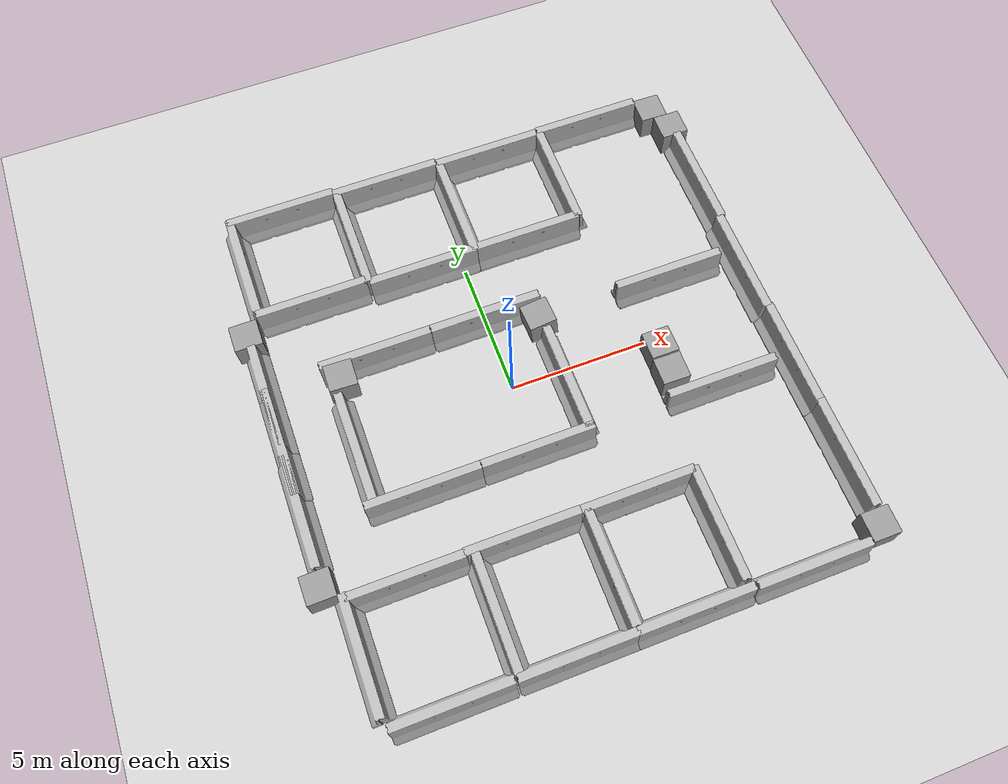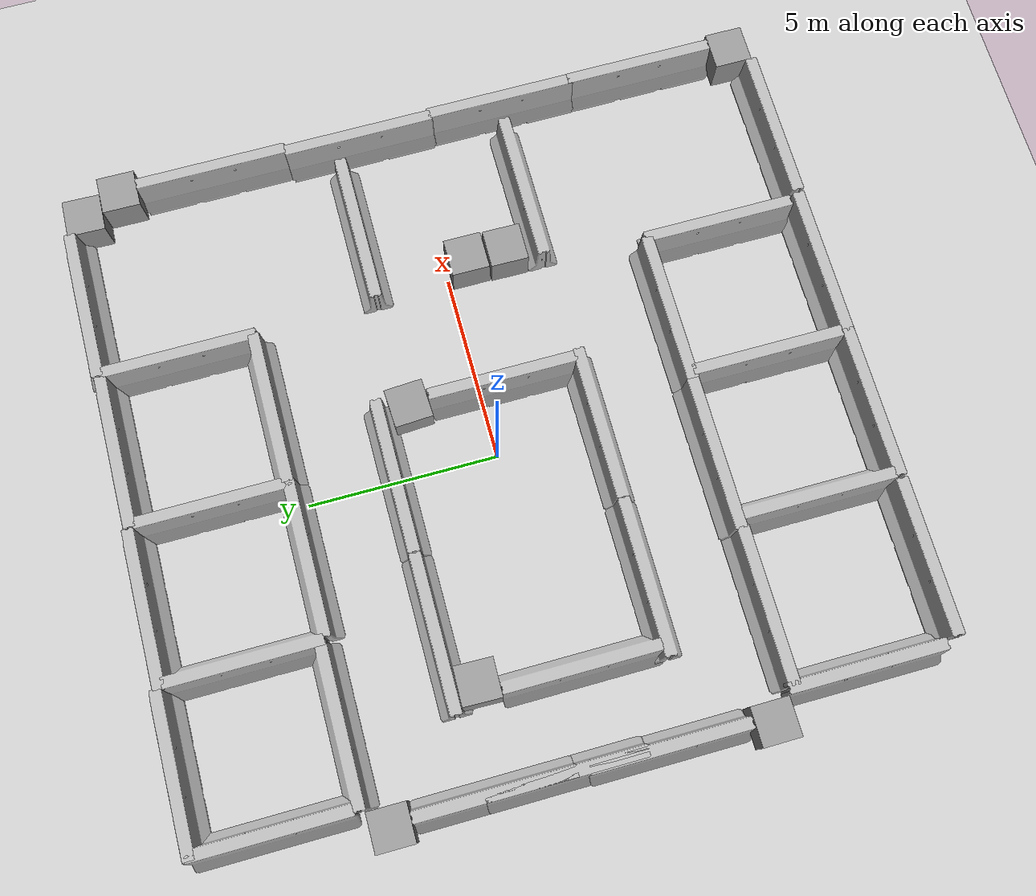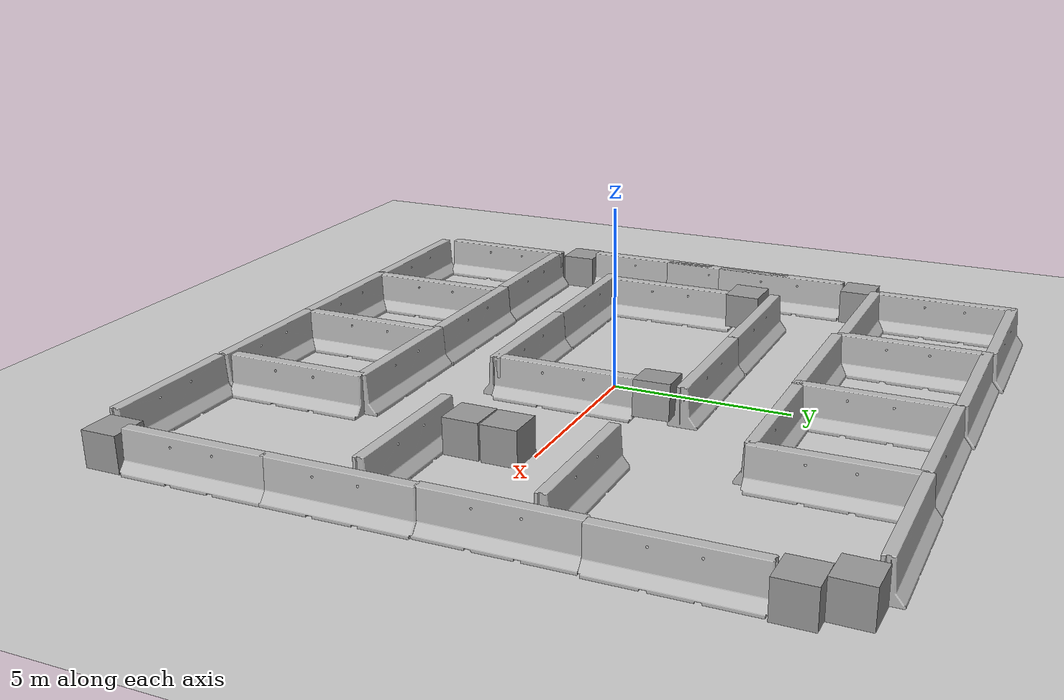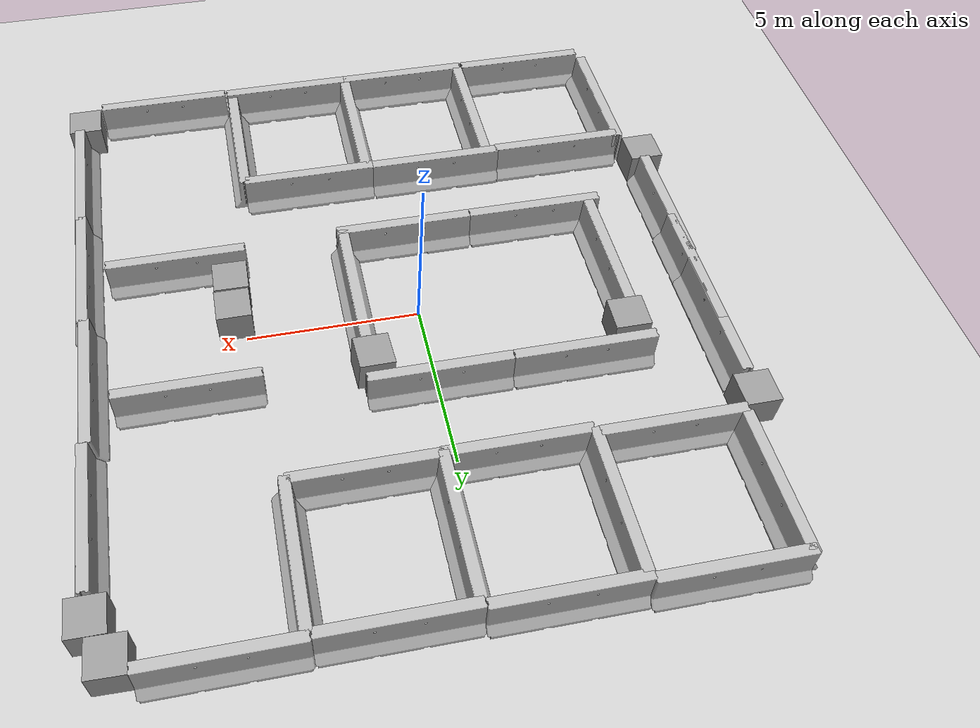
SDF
<sdf version="1.6">
 <world name="default">
  <light name="sun" type="directional">
   <pose>0 0 10 0 -0 0</pose>
   <diffuse>0.8 0.8 0.8 1</diffuse>
   <specular>0.2 0.2 0.2 1</specular>
   <attenuation>
    <range>1000</range>
    <constant>0.9</constant>
    <linear>0.01</linear>
    <quadratic>0.001</quadratic>
   </attenuation>
   <direction>-0.5 0.1 -0.9</direction>
  </light>
  <model name="ground_plane">
   <static>1</static>
   <link name="link">
    <collision name="collision">
     <geometry><plane><normal>0 0 1</normal><size>100 100</size></plane></geometry>
     <surface><friction><ode><mu>100</mu><mu2>50</mu2></ode></friction></surface>
    </collision>
    <visual name="visual">
     <cast_shadows>0</cast_shadows>
     <geometry><plane><normal>0 0 1</normal><size>100 100</size></plane></geometry>
     <material>
      <script><uri>file://media/materials/scripts/gazebo.material</uri><name>Gazebo/Grey</name></script>
     </material>
    </visual>
   </link>
  </model>
  <gravity>0 0 -9.8</gravity>
  <magnetic_field>6e-06 2.3e-05 -4.2e-05</magnetic_field>
  <atmosphere type="adiabatic"/>
  <physics name="default_physics" default="0" type="ode">
   <max_step_size>0.001</max_step_size>
   <real_time_factor>1</real_time_factor>
   <real_time_update_rate>1000</real_time_update_rate>
  </physics>
  <scene><ambient>0.4 0.4 0.4 1</ambient><background>0.7 0.7 0.7 1</background><shadows>1</shadows></scene>
  <spherical_coordinates>
   <surface_model>EARTH_WGS84</surface_model>
   <latitude_deg>0</latitude_deg>
   <longitude_deg>0</longitude_deg>
   <elevation>0</elevation>
   <heading_deg>0</heading_deg>
  </spherical_coordinates>
  <model name="jersey_barrier">
   <static>1</static>
   <link name="link">
    <visual name="visual">
     <geometry>
      <mesh><uri>model://jersey_barrier/meshes/jersey_barrier.dae</uri><scale>1 1 1</scale></mesh>
     </geometry>
    </visual>
    <collision name="upright">
     <pose>0 0 0.5715 0 -0 0</pose>
     <geometry><box><size>4.06542 0.3063 1.143</size></box></geometry>
    </collision>
    <collision name="base">
     <pose>0 0 0.032258 0 -0 0</pose>
     <geometry><box><size>4.06542 0.8107 0.064516</size></box></geometry>
    </collision>
    <collision name="base2">
     <pose>0 0 0.1 0 -0 0</pose>
     <geometry><box><size>4.06542 0.65 0.1</size></box></geometry>
    </collision>
    <collision name="base3">
     <pose>0 0 0.2 0 -0 0</pose>
     <geometry><box><size>4.06542 0.5 0.1</size></box></geometry>
    </collision>
    <collision name="left-angle">
     <pose>0 -0.224 0.2401 0.9 -0 0</pose>
     <geometry><box><size>4.06542 0.5 0.064516</size></box></geometry>
    </collision>
    <collision name="right-angle">
     <pose>0 0.224 0.2401 -0.9 0 0</pose>
     <geometry><box><size>4.06542 0.5 0.064516</size></box></geometry>
    </collision>
   </link>
   <pose>-5.65677 9.4608 0 0 -0 0</pose>
  </model>
  <model name="jersey_barrier_clone">
   <static>1</static>
   <link name="link">
    <visual name="visual">
     <geometry>
      <mesh><uri>model://jersey_barrier/meshes/jersey_barrier.dae</uri><scale>1 1 1</scale></mesh>
     </geometry>
    </visual>
    <collision name="upright">
     <pose>0 0 0.5715 0 -0 0</pose>
     <geometry><box><size>4.06542 0.3063 1.143</size></box></geometry>
    </collision>
    <collision name="base">
     <pose>0 0 0.032258 0 -0 0</pose>
     <geometry><box><size>4.06542 0.8107 0.064516</size></box></geometry>
    </collision>
    <collision name="base2">
     <pose>0 0 0.1 0 -0 0</pose>
     <geometry><box><size>4.06542 0.65 0.1</size></box></geometry>
    </collision>
    <collision name="base3">
     <pose>0 0 0.2 0 -0 0</pose>
     <geometry><box><size>4.06542 0.5 0.1</size></box></geometry>
    </collision>
    <collision name="left-angle">
     <pose>0 -0.224 0.2401 0.9 -0 0</pose>
     <geometry><box><size>4.06542 0.5 0.064516</size></box></geometry>
    </collision>
    <collision name="right-angle">
     <pose>0 0.224 0.2401 -0.9 0 0</pose>
     <geometry><box><size>4.06542 0.5 0.064516</size></box></geometry>
    </collision>
   </link>
   <pose>-1.65987 9.36075 0 0 -0 0</pose>
  </model>
  <model name="jersey_barrier_clone_0">
   <static>1</static>
   <link name="link">
    <visual name="visual">
     <geometry>
      <mesh><uri>model://jersey_barrier/meshes/jersey_barrier.dae</uri><scale>1 1 1</scale></mesh>
     </geometry>
    </visual>
    <collision name="upright">
     <pose>0 0 0.5715 0 -0 0</pose>
     <geometry><box><size>4.06542 0.3063 1.143</size></box></geometry>
    </collision>
    <collision name="base">
     <pose>0 0 0.032258 0 -0 0</pose>
     <geometry><box><size>4.06542 0.8107 0.064516</size></box></geometry>
    </collision>
    <collision name="base2">
     <pose>0 0 0.1 0 -0 0</pose>
     <geometry><box><size>4.06542 0.65 0.1</size></box></geometry>
    </collision>
    <collision name="base3">
     <pose>0 0 0.2 0 -0 0</pose>
     <geometry><box><size>4.06542 0.5 0.1</size></box></geometry>
    </collision>
    <collision name="left-angle">
     <pose>0 -0.224 0.2401 0.9 -0 0</pose>
     <geometry><box><size>4.06542 0.5 0.064516</size></box></geometry>
    </collision>
    <collision name="right-angle">
     <pose>0 0.224 0.2401 -0.9 0 0</pose>
     <geometry><box><size>4.06542 0.5 0.064516</size></box></geometry>
    </collision>
   </link>
   <pose>2.39773 9.29085 0 0 -0 0</pose>
  </model>
  <model name="jersey_barrier_clone_1">
   <static>1</static>
   <link name="link">
    <visual name="visual">
     <geometry>
      <mesh><uri>model://jersey_barrier/meshes/jersey_barrier.dae</uri><scale>1 1 1</scale></mesh>
     </geometry>
    </visual>
    <collision name="upright">
     <pose>0 0 0.5715 0 -0 0</pose>
     <geometry><box><size>4.06542 0.3063 1.143</size></box></geometry>
    </collision>
    <collision name="base">
     <pose>0 0 0.032258 0 -0 0</pose>
     <geometry><box><size>4.06542 0.8107 0.064516</size></box></geometry>
    </collision>
    <collision name="base2">
     <pose>0 0 0.1 0 -0 0</pose>
     <geometry><box><size>4.06542 0.65 0.1</size></box></geometry>
    </collision>
    <collision name="base3">
     <pose>0 0 0.2 0 -0 0</pose>
     <geometry><box><size>4.06542 0.5 0.1</size></box></geometry>
    </collision>
    <collision name="left-angle">
     <pose>0 -0.224 0.2401 0.9 -0 0</pose>
     <geometry><box><size>4.06542 0.5 0.064516</size></box></geometry>
    </collision>
    <collision name="right-angle">
     <pose>0 0.224 0.2401 -0.9 0 0</pose>
     <geometry><box><size>4.06542 0.5 0.064516</size></box></geometry>
    </collision>
   </link>
   <pose>6.45464 9.33993 0 0 -0 0</pose>
  </model>
  <model name="jersey_barrier_clone_3">
   <static>1</static>
   <link name="link">
    <visual name="visual">
     <geometry>
      <mesh><uri>model://jersey_barrier/meshes/jersey_barrier.dae</uri><scale>1 1 1</scale></mesh>
     </geometry>
    </visual>
    <collision name="upright">
     <pose>0 0 0.5715 0 -0 0</pose>
     <geometry><box><size>4.06542 0.3063 1.143</size></box></geometry>
    </collision>
    <collision name="base">
     <pose>0 0 0.032258 0 -0 0</pose>
     <geometry><box><size>4.06542 0.8107 0.064516</size></box></geometry>
    </collision>
    <collision name="base2">
     <pose>0 0 0.1 0 -0 0</pose>
     <geometry><box><size>4.06542 0.65 0.1</size></box></geometry>
    </collision>
    <collision name="base3">
     <pose>0 0 0.2 0 -0 0</pose>
     <geometry><box><size>4.06542 0.5 0.1</size></box></geometry>
    </collision>
    <collision name="left-angle">
     <pose>0 -0.224 0.2401 0.9 -0 0</pose>
     <geometry><box><size>4.06542 0.5 0.064516</size></box></geometry>
    </collision>
    <collision name="right-angle">
     <pose>0 0.224 0.2401 -0.9 0 0</pose>
     <geometry><box><size>4.06542 0.5 0.064516</size></box></geometry>
    </collision>
   </link>
   <pose>9.44656 5.35522 0 0 0 -1.56865</pose>
  </model>
  <model name="jersey_barrier_clone_3_clone">
   <static>1</static>
   <link name="link">
    <visual name="visual">
     <geometry>
      <mesh><uri>model://jersey_barrier/meshes/jersey_barrier.dae</uri><scale>1 1 1</scale></mesh>
     </geometry>
    </visual>
    <collision name="upright">
     <pose>0 0 0.5715 0 -0 0</pose>
     <geometry><box><size>4.06542 0.3063 1.143</size></box></geometry>
    </collision>
    <collision name="base">
     <pose>0 0 0.032258 0 -0 0</pose>
     <geometry><box><size>4.06542 0.8107 0.064516</size></box></geometry>
    </collision>
    <collision name="base2">
     <pose>0 0 0.1 0 -0 0</pose>
     <geometry><box><size>4.06542 0.65 0.1</size></box></geometry>
    </collision>
    <collision name="base3">
     <pose>0 0 0.2 0 -0 0</pose>
     <geometry><box><size>4.06542 0.5 0.1</size></box></geometry>
    </collision>
    <collision name="left-angle">
     <pose>0 -0.224 0.2401 0.9 -0 0</pose>
     <geometry><box><size>4.06542 0.5 0.064516</size></box></geometry>
    </collision>
    <collision name="right-angle">
     <pose>0 0.224 0.2401 -0.9 0 0</pose>
     <geometry><box><size>4.06542 0.5 0.064516</size></box></geometry>
    </collision>
   </link>
   <pose>9.3727 1.33119 0 0 0 -1.56865</pose>
  </model>
  <model name="jersey_barrier_clone_3_clone_0">
   <static>1</static>
   <link name="link">
    <visual name="visual">
     <geometry>
      <mesh><uri>model://jersey_barrier/meshes/jersey_barrier.dae</uri><scale>1 1 1</scale></mesh>
     </geometry>
    </visual>
    <collision name="upright">
     <pose>0 0 0.5715 0 -0 0</pose>
     <geometry><box><size>4.06542 0.3063 1.143</size></box></geometry>
    </collision>
    <collision name="base">
     <pose>0 0 0.032258 0 -0 0</pose>
     <geometry><box><size>4.06542 0.8107 0.064516</size></box></geometry>
    </collision>
    <collision name="base2">
     <pose>0 0 0.1 0 -0 0</pose>
     <geometry><box><size>4.06542 0.65 0.1</size></box></geometry>
    </collision>
    <collision name="base3">
     <pose>0 0 0.2 0 -0 0</pose>
     <geometry><box><size>4.06542 0.5 0.1</size></box></geometry>
    </collision>
    <collision name="left-angle">
     <pose>0 -0.224 0.2401 0.9 -0 0</pose>
     <geometry><box><size>4.06542 0.5 0.064516</size></box></geometry>
    </collision>
    <collision name="right-angle">
     <pose>0 0.224 0.2401 -0.9 0 0</pose>
     <geometry><box><size>4.06542 0.5 0.064516</size></box></geometry>
    </collision>
   </link>
   <pose>9.4315 -2.6268 0 0 0 -1.56865</pose>
  </model>
  <model name="jersey_barrier_clone_3_clone_1">
   <static>1</static>
   <link name="link">
    <visual name="visual">
     <geometry>
      <mesh><uri>model://jersey_barrier/meshes/jersey_barrier.dae</uri><scale>1 1 1</scale></mesh>
     </geometry>
    </visual>
    <collision name="upright">
     <pose>0 0 0.5715 0 -0 0</pose>
     <geometry><box><size>4.06542 0.3063 1.143</size></box></geometry>
    </collision>
    <collision name="base">
     <pose>0 0 0.032258 0 -0 0</pose>
     <geometry><box><size>4.06542 0.8107 0.064516</size></box></geometry>
    </collision>
    <collision name="base2">
     <pose>0 0 0.1 0 -0 0</pose>
     <geometry><box><size>4.06542 0.65 0.1</size></box></geometry>
    </collision>
    <collision name="base3">
     <pose>0 0 0.2 0 -0 0</pose>
     <geometry><box><size>4.06542 0.5 0.1</size></box></geometry>
    </collision>
    <collision name="left-angle">
     <pose>0 -0.224 0.2401 0.9 -0 0</pose>
     <geometry><box><size>4.06542 0.5 0.064516</size></box></geometry>
    </collision>
    <collision name="right-angle">
     <pose>0 0.224 0.2401 -0.9 0 0</pose>
     <geometry><box><size>4.06542 0.5 0.064516</size></box></geometry>
    </collision>
   </link>
   <pose>9.44969 -6.53485 0 0 0 -1.56865</pose>
  </model>
  <model name="jersey_barrier_clone_2_clone">
   <static>1</static>
   <link name="link">
    <visual name="visual">
     <geometry>
      <mesh><uri>model://jersey_barrier/meshes/jersey_barrier.dae</uri><scale>1 1 1</scale></mesh>
     </geometry>
    </visual>
    <collision name="upright">
     <pose>0 0 0.5715 0 -0 0</pose>
     <geometry><box><size>4.06542 0.3063 1.143</size></box></geometry>
    </collision>
    <collision name="base">
     <pose>0 0 0.032258 0 -0 0</pose>
     <geometry><box><size>4.06542 0.8107 0.064516</size></box></geometry>
    </collision>
    <collision name="base2">
     <pose>0 0 0.1 0 -0 0</pose>
     <geometry><box><size>4.06542 0.65 0.1</size></box></geometry>
    </collision>
    <collision name="base3">
     <pose>0 0 0.2 0 -0 0</pose>
     <geometry><box><size>4.06542 0.5 0.1</size></box></geometry>
    </collision>
    <collision name="left-angle">
     <pose>0 -0.224 0.2401 0.9 -0 0</pose>
     <geometry><box><size>4.06542 0.5 0.064516</size></box></geometry>
    </collision>
    <collision name="right-angle">
     <pose>0 0.224 0.2401 -0.9 0 0</pose>
     <geometry><box><size>4.06542 0.5 0.064516</size></box></geometry>
    </collision>
   </link>
   <pose>6.70657 -9.54347 0 0 -0 0</pose>
  </model>
  <model name="jersey_barrier_clone_2_clone_0">
   <static>1</static>
   <link name="link">
    <visual name="visual">
     <geometry>
      <mesh><uri>model://jersey_barrier/meshes/jersey_barrier.dae</uri><scale>1 1 1</scale></mesh>
     </geometry>
    </visual>
    <collision name="upright">
     <pose>0 0 0.5715 0 -0 0</pose>
     <geometry><box><size>4.06542 0.3063 1.143</size></box></geometry>
    </collision>
    <collision name="base">
     <pose>0 0 0.032258 0 -0 0</pose>
     <geometry><box><size>4.06542 0.8107 0.064516</size></box></geometry>
    </collision>
    <collision name="base2">
     <pose>0 0 0.1 0 -0 0</pose>
     <geometry><box><size>4.06542 0.65 0.1</size></box></geometry>
    </collision>
    <collision name="base3">
     <pose>0 0 0.2 0 -0 0</pose>
     <geometry><box><size>4.06542 0.5 0.1</size></box></geometry>
    </collision>
    <collision name="left-angle">
     <pose>0 -0.224 0.2401 0.9 -0 0</pose>
     <geometry><box><size>4.06542 0.5 0.064516</size></box></geometry>
    </collision>
    <collision name="right-angle">
     <pose>0 0.224 0.2401 -0.9 0 0</pose>
     <geometry><box><size>4.06542 0.5 0.064516</size></box></geometry>
    </collision>
   </link>
   <pose>2.59616 -9.50928 0 0 -0 0</pose>
  </model>
  <model name="jersey_barrier_clone_2_clone_1">
   <static>1</static>
   <link name="link">
    <visual name="visual">
     <geometry>
      <mesh><uri>model://jersey_barrier/meshes/jersey_barrier.dae</uri><scale>1 1 1</scale></mesh>
     </geometry>
    </visual>
    <collision name="upright">
     <pose>0 0 0.5715 0 -0 0</pose>
     <geometry><box><size>4.06542 0.3063 1.143</size></box></geometry>
    </collision>
    <collision name="base">
     <pose>0 0 0.032258 0 -0 0</pose>
     <geometry><box><size>4.06542 0.8107 0.064516</size></box></geometry>
    </collision>
    <collision name="base2">
     <pose>0 0 0.1 0 -0 0</pose>
     <geometry><box><size>4.06542 0.65 0.1</size></box></geometry>
    </collision>
    <collision name="base3">
     <pose>0 0 0.2 0 -0 0</pose>
     <geometry><box><size>4.06542 0.5 0.1</size></box></geometry>
    </collision>
    <collision name="left-angle">
     <pose>0 -0.224 0.2401 0.9 -0 0</pose>
     <geometry><box><size>4.06542 0.5 0.064516</size></box></geometry>
    </collision>
    <collision name="right-angle">
     <pose>0 0.224 0.2401 -0.9 0 0</pose>
     <geometry><box><size>4.06542 0.5 0.064516</size></box></geometry>
    </collision>
   </link>
   <pose>-1.33414 -9.50852 0 0 -0 0</pose>
  </model>
  <model name="jersey_barrier_clone_2_clone_2">
   <static>1</static>
   <link name="link">
    <visual name="visual">
     <geometry>
      <mesh><uri>model://jersey_barrier/meshes/jersey_barrier.dae</uri><scale>1 1 1</scale></mesh>
     </geometry>
    </visual>
    <collision name="upright">
     <pose>0 0 0.5715 0 -0 0</pose>
     <geometry><box><size>4.06542 0.3063 1.143</size></box></geometry>
    </collision>
    <collision name="base">
     <pose>0 0 0.032258 0 -0 0</pose>
     <geometry><box><size>4.06542 0.8107 0.064516</size></box></geometry>
    </collision>
    <collision name="base2">
     <pose>0 0 0.1 0 -0 0</pose>
     <geometry><box><size>4.06542 0.65 0.1</size></box></geometry>
    </collision>
    <collision name="base3">
     <pose>0 0 0.2 0 -0 0</pose>
     <geometry><box><size>4.06542 0.5 0.1</size></box></geometry>
    </collision>
    <collision name="left-angle">
     <pose>0 -0.224 0.2401 0.9 -0 0</pose>
     <geometry><box><size>4.06542 0.5 0.064516</size></box></geometry>
    </collision>
    <collision name="right-angle">
     <pose>0 0.224 0.2401 -0.9 0 0</pose>
     <geometry><box><size>4.06542 0.5 0.064516</size></box></geometry>
    </collision>
   </link>
   <pose>-5.44605 -9.49634 0 0 -0 0</pose>
  </model>
  <model name="jersey_barrier_clone_2_clone_clone">
   <static>1</static>
   <link name="link">
    <visual name="visual">
     <geometry>
      <mesh><uri>model://jersey_barrier/meshes/jersey_barrier.dae</uri><scale>1 1 1</scale></mesh>
     </geometry>
    </visual>
    <collision name="upright">
     <pose>0 0 0.5715 0 -0 0</pose>
     <geometry><box><size>4.06542 0.3063 1.143</size></box></geometry>
    </collision>
    <collision name="base">
     <pose>0 0 0.032258 0 -0 0</pose>
     <geometry><box><size>4.06542 0.8107 0.064516</size></box></geometry>
    </collision>
    <collision name="base2">
     <pose>0 0 0.1 0 -0 0</pose>
     <geometry><box><size>4.06542 0.65 0.1</size></box></geometry>
    </collision>
    <collision name="base3">
     <pose>0 0 0.2 0 -0 0</pose>
     <geometry><box><size>4.06542 0.5 0.1</size></box></geometry>
    </collision>
    <collision name="left-angle">
     <pose>0 -0.224 0.2401 0.9 -0 0</pose>
     <geometry><box><size>4.06542 0.5 0.064516</size></box></geometry>
    </collision>
    <collision name="right-angle">
     <pose>0 0.224 0.2401 -0.9 0 0</pose>
     <geometry><box><size>4.06542 0.5 0.064516</size></box></geometry>
    </collision>
   </link>
   <pose>6.73827 -2.55528 0 0 -0 0</pose>
  </model>
  <model name="jersey_barrier_clone_2_clone_clone_0">
   <static>1</static>
   <link name="link">
    <visual name="visual">
     <geometry>
      <mesh><uri>model://jersey_barrier/meshes/jersey_barrier.dae</uri><scale>1 1 1</scale></mesh>
     </geometry>
    </visual>
    <collision name="upright">
     <pose>0 0 0.5715 0 -0 0</pose>
     <geometry><box><size>4.06542 0.3063 1.143</size></box></geometry>
    </collision>
    <collision name="base">
     <pose>0 0 0.032258 0 -0 0</pose>
     <geometry><box><size>4.06542 0.8107 0.064516</size></box></geometry>
    </collision>
    <collision name="base2">
     <pose>0 0 0.1 0 -0 0</pose>
     <geometry><box><size>4.06542 0.65 0.1</size></box></geometry>
    </collision>
    <collision name="base3">
     <pose>0 0 0.2 0 -0 0</pose>
     <geometry><box><size>4.06542 0.5 0.1</size></box></geometry>
    </collision>
    <collision name="left-angle">
     <pose>0 -0.224 0.2401 0.9 -0 0</pose>
     <geometry><box><size>4.06542 0.5 0.064516</size></box></geometry>
    </collision>
    <collision name="right-angle">
     <pose>0 0.224 0.2401 -0.9 0 0</pose>
     <geometry><box><size>4.06542 0.5 0.064516</size></box></geometry>
    </collision>
   </link>
   <pose>6.71549 1.98356 0 0 -0 0</pose>
  </model>
  <model name="unit_box_0">
   <pose>5.25042 -1.63784 0.499995 -1e-05 -0 -0.011102</pose>
   <link name="link">
    <inertial>
     <mass>1</mass>
     <inertia>
      <ixx>0.166667</ixx>
      <ixy>0</ixy>
      <ixz>0</ixz>
      <iyy>0.166667</iyy>
      <iyz>0</iyz>
      <izz>0.166667</izz>
     </inertia>
    </inertial>
    <collision name="collision"><geometry><box><size>1 1 1</size></box></geometry></collision>
    <visual name="visual">
     <geometry><box><size>1 1 1</size></box></geometry>
     <material>
      <script><name>Gazebo/Grey</name><uri>file://media/materials/scripts/gazebo.material</uri></script>
     </material>
    </visual>
   </link>
  </model>
  <model name="unit_box_1">
   <pose>5.27717 -0.587206 0.499995 -1e-05 0 0</pose>
   <link name="link">
    <inertial>
     <mass>1</mass>
     <inertia>
      <ixx>0.166667</ixx>
      <ixy>0</ixy>
      <ixz>0</ixz>
      <iyy>0.166667</iyy>
      <iyz>0</iyz>
      <izz>0.166667</izz>
     </inertia>
    </inertial>
    <collision name="collision"><geometry><box><size>1 1 1</size></box></geometry></collision>
    <visual name="visual">
     <geometry><box><size>1 1 1</size></box></geometry>
     <material>
      <script><name>Gazebo/Grey</name><uri>file://media/materials/scripts/gazebo.material</uri></script>
     </material>
    </visual>
   </link>
  </model>
  <model name="jersey_barrier_clone_2_clone_clone_1">
   <static>1</static>
   <link name="link">
    <visual name="visual">
     <geometry>
      <mesh><uri>model://jersey_barrier/meshes/jersey_barrier.dae</uri><scale>1 1 1</scale></mesh>
     </geometry>
    </visual>
    <collision name="upright">
     <pose>0 0 0.5715 0 -0 0</pose>
     <geometry><box><size>4.06542 0.3063 1.143</size></box></geometry>
    </collision>
    <collision name="base">
     <pose>0 0 0.032258 0 -0 0</pose>
     <geometry><box><size>4.06542 0.8107 0.064516</size></box></geometry>
    </collision>
    <collision name="base2">
     <pose>0 0 0.1 0 -0 0</pose>
     <geometry><box><size>4.06542 0.65 0.1</size></box></geometry>
    </collision>
    <collision name="base3">
     <pose>0 0 0.2 0 -0 0</pose>
     <geometry><box><size>4.06542 0.5 0.1</size></box></geometry>
    </collision>
    <collision name="left-angle">
     <pose>0 -0.224 0.2401 0.9 -0 0</pose>
     <geometry><box><size>4.06542 0.5 0.064516</size></box></geometry>
    </collision>
    <collision name="right-angle">
     <pose>0 0.224 0.2401 -0.9 0 0</pose>
     <geometry><box><size>4.06542 0.5 0.064516</size></box></geometry>
    </collision>
   </link>
   <pose>-0.062584 -2.66715 0 0 -0 0</pose>
  </model>
  <model name="jersey_barrier_clone_2_clone_clone_2">
   <static>1</static>
   <link name="link">
    <visual name="visual">
     <geometry>
      <mesh><uri>model://jersey_barrier/meshes/jersey_barrier.dae</uri><scale>1 1 1</scale></mesh>
     </geometry>
    </visual>
    <collision name="upright">
     <pose>0 0 0.5715 0 -0 0</pose>
     <geometry><box><size>4.06542 0.3063 1.143</size></box></geometry>
    </collision>
    <collision name="base">
     <pose>0 0 0.032258 0 -0 0</pose>
     <geometry><box><size>4.06542 0.8107 0.064516</size></box></geometry>
    </collision>
    <collision name="base2">
     <pose>0 0 0.1 0 -0 0</pose>
     <geometry><box><size>4.06542 0.65 0.1</size></box></geometry>
    </collision>
    <collision name="base3">
     <pose>0 0 0.2 0 -0 0</pose>
     <geometry><box><size>4.06542 0.5 0.1</size></box></geometry>
    </collision>
    <collision name="left-angle">
     <pose>0 -0.224 0.2401 0.9 -0 0</pose>
     <geometry><box><size>4.06542 0.5 0.064516</size></box></geometry>
    </collision>
    <collision name="right-angle">
     <pose>0 0.224 0.2401 -0.9 0 0</pose>
     <geometry><box><size>4.06542 0.5 0.064516</size></box></geometry>
    </collision>
   </link>
   <pose>-4.09913 -2.66693 0 0 -0 0</pose>
  </model>
  <model name="jersey_barrier_clone_2_clone_clone_3">
   <static>1</static>
   <link name="link">
    <visual name="visual">
     <geometry>
      <mesh><uri>model://jersey_barrier/meshes/jersey_barrier.dae</uri><scale>1 1 1</scale></mesh>
     </geometry>
    </visual>
    <collision name="upright">
     <pose>0 0 0.5715 0 -0 0</pose>
     <geometry><box><size>4.06542 0.3063 1.143</size></box></geometry>
    </collision>
    <collision name="base">
     <pose>0 0 0.032258 0 -0 0</pose>
     <geometry><box><size>4.06542 0.8107 0.064516</size></box></geometry>
    </collision>
    <collision name="base2">
     <pose>0 0 0.1 0 -0 0</pose>
     <geometry><box><size>4.06542 0.65 0.1</size></box></geometry>
    </collision>
    <collision name="base3">
     <pose>0 0 0.2 0 -0 0</pose>
     <geometry><box><size>4.06542 0.5 0.1</size></box></geometry>
    </collision>
    <collision name="left-angle">
     <pose>0 -0.224 0.2401 0.9 -0 0</pose>
     <geometry><box><size>4.06542 0.5 0.064516</size></box></geometry>
    </collision>
    <collision name="right-angle">
     <pose>0 0.224 0.2401 -0.9 0 0</pose>
     <geometry><box><size>4.06542 0.5 0.064516</size></box></geometry>
    </collision>
   </link>
   <pose>-0.034182 2.67671 0 0 -0 0</pose>
  </model>
  <model name="jersey_barrier_clone_2_clone_clone_4">
   <static>1</static>
   <link name="link">
    <visual name="visual">
     <geometry>
      <mesh><uri>model://jersey_barrier/meshes/jersey_barrier.dae</uri><scale>1 1 1</scale></mesh>
     </geometry>
    </visual>
    <collision name="upright">
     <pose>0 0 0.5715 0 -0 0</pose>
     <geometry><box><size>4.06542 0.3063 1.143</size></box></geometry>
    </collision>
    <collision name="base">
     <pose>0 0 0.032258 0 -0 0</pose>
     <geometry><box><size>4.06542 0.8107 0.064516</size></box></geometry>
    </collision>
    <collision name="base2">
     <pose>0 0 0.1 0 -0 0</pose>
     <geometry><box><size>4.06542 0.65 0.1</size></box></geometry>
    </collision>
    <collision name="base3">
     <pose>0 0 0.2 0 -0 0</pose>
     <geometry><box><size>4.06542 0.5 0.1</size></box></geometry>
    </collision>
    <collision name="left-angle">
     <pose>0 -0.224 0.2401 0.9 -0 0</pose>
     <geometry><box><size>4.06542 0.5 0.064516</size></box></geometry>
    </collision>
    <collision name="right-angle">
     <pose>0 0.224 0.2401 -0.9 0 0</pose>
     <geometry><box><size>4.06542 0.5 0.064516</size></box></geometry>
    </collision>
   </link>
   <pose>-4.08325 2.67745 0 0 -0 0</pose>
  </model>
  <model name="jersey_barrier_clone_3_clone_1_clone_3">
   <static>1</static>
   <link name="link">
    <visual name="visual">
     <geometry>
      <mesh><uri>model://jersey_barrier/meshes/jersey_barrier.dae</uri><scale>1 1 1</scale></mesh>
     </geometry>
    </visual>
    <collision name="upright">
     <pose>0 0 0.5715 0 -0 0</pose>
     <geometry><box><size>4.06542 0.3063 1.143</size></box></geometry>
    </collision>
    <collision name="base">
     <pose>0 0 0.032258 0 -0 0</pose>
     <geometry><box><size>4.06542 0.8107 0.064516</size></box></geometry>
    </collision>
    <collision name="base2">
     <pose>0 0 0.1 0 -0 0</pose>
     <geometry><box><size>4.06542 0.65 0.1</size></box></geometry>
    </collision>
    <collision name="base3">
     <pose>0 0 0.2 0 -0 0</pose>
     <geometry><box><size>4.06542 0.5 0.1</size></box></geometry>
    </collision>
    <collision name="left-angle">
     <pose>0 -0.224 0.2401 0.9 -0 0</pose>
     <geometry><box><size>4.06542 0.5 0.064516</size></box></geometry>
    </collision>
    <collision name="right-angle">
     <pose>0 0.224 0.2401 -0.9 0 0</pose>
     <geometry><box><size>4.06542 0.5 0.064516</size></box></geometry>
    </collision>
   </link>
   <pose>4.44342 -7.23329 0 0 0 -1.56865</pose>
  </model>
  <model name="jersey_barrier_clone_3_clone_1_clone_3_clone">
   <static>1</static>
   <link name="link">
    <visual name="visual">
     <geometry>
      <mesh><uri>model://jersey_barrier/meshes/jersey_barrier.dae</uri><scale>1 1 1</scale></mesh>
     </geometry>
    </visual>
    <collision name="upright">
     <pose>0 0 0.5715 0 -0 0</pose>
     <geometry><box><size>4.06542 0.3063 1.143</size></box></geometry>
    </collision>
    <collision name="base">
     <pose>0 0 0.032258 0 -0 0</pose>
     <geometry><box><size>4.06542 0.8107 0.064516</size></box></geometry>
    </collision>
    <collision name="base2">
     <pose>0 0 0.1 0 -0 0</pose>
     <geometry><box><size>4.06542 0.65 0.1</size></box></geometry>
    </collision>
    <collision name="base3">
     <pose>0 0 0.2 0 -0 0</pose>
     <geometry><box><size>4.06542 0.5 0.1</size></box></geometry>
    </collision>
    <collision name="left-angle">
     <pose>0 -0.224 0.2401 0.9 -0 0</pose>
     <geometry><box><size>4.06542 0.5 0.064516</size></box></geometry>
    </collision>
    <collision name="right-angle">
     <pose>0 0.224 0.2401 -0.9 0 0</pose>
     <geometry><box><size>4.06542 0.5 0.064516</size></box></geometry>
    </collision>
   </link>
   <pose>0.636697 -7.33594 0 0 0 -1.56865</pose>
  </model>
  <model name="jersey_barrier_clone_3_clone_1_clone_3_clone_0">
   <static>1</static>
   <link name="link">
    <visual name="visual">
     <geometry>
      <mesh><uri>model://jersey_barrier/meshes/jersey_barrier.dae</uri><scale>1 1 1</scale></mesh>
     </geometry>
    </visual>
    <collision name="upright">
     <pose>0 0 0.5715 0 -0 0</pose>
     <geometry><box><size>4.06542 0.3063 1.143</size></box></geometry>
    </collision>
    <collision name="base">
     <pose>0 0 0.032258 0 -0 0</pose>
     <geometry><box><size>4.06542 0.8107 0.064516</size></box></geometry>
    </collision>
    <collision name="base2">
     <pose>0 0 0.1 0 -0 0</pose>
     <geometry><box><size>4.06542 0.65 0.1</size></box></geometry>
    </collision>
    <collision name="base3">
     <pose>0 0 0.2 0 -0 0</pose>
     <geometry><box><size>4.06542 0.5 0.1</size></box></geometry>
    </collision>
    <collision name="left-angle">
     <pose>0 -0.224 0.2401 0.9 -0 0</pose>
     <geometry><box><size>4.06542 0.5 0.064516</size></box></geometry>
    </collision>
    <collision name="right-angle">
     <pose>0 0.224 0.2401 -0.9 0 0</pose>
     <geometry><box><size>4.06542 0.5 0.064516</size></box></geometry>
    </collision>
   </link>
   <pose>-3.25159 -7.39325 0 0 0 -1.56865</pose>
  </model>
  <model name="jersey_barrier_clone_3_clone_1_clone_3_clone_1">
   <static>1</static>
   <link name="link">
    <visual name="visual">
     <geometry>
      <mesh><uri>model://jersey_barrier/meshes/jersey_barrier.dae</uri><scale>1 1 1</scale></mesh>
     </geometry>
    </visual>
    <collision name="upright">
     <pose>0 0 0.5715 0 -0 0</pose>
     <geometry><box><size>4.06542 0.3063 1.143</size></box></geometry>
    </collision>
    <collision name="base">
     <pose>0 0 0.032258 0 -0 0</pose>
     <geometry><box><size>4.06542 0.8107 0.064516</size></box></geometry>
    </collision>
    <collision name="base2">
     <pose>0 0 0.1 0 -0 0</pose>
     <geometry><box><size>4.06542 0.65 0.1</size></box></geometry>
    </collision>
    <collision name="base3">
     <pose>0 0 0.2 0 -0 0</pose>
     <geometry><box><size>4.06542 0.5 0.1</size></box></geometry>
    </collision>
    <collision name="left-angle">
     <pose>0 -0.224 0.2401 0.9 -0 0</pose>
     <geometry><box><size>4.06542 0.5 0.064516</size></box></geometry>
    </collision>
    <collision name="right-angle">
     <pose>0 0.224 0.2401 -0.9 0 0</pose>
     <geometry><box><size>4.06542 0.5 0.064516</size></box></geometry>
    </collision>
   </link>
   <pose>-7.57568 -7.14796 0 0 0 -1.56865</pose>
  </model>
  <model name="jersey_barrier_clone_2_clone_clone_1_clone">
   <static>1</static>
   <link name="link">
    <visual name="visual">
     <geometry>
      <mesh><uri>model://jersey_barrier/meshes/jersey_barrier.dae</uri><scale>1 1 1</scale></mesh>
     </geometry>
    </visual>
    <collision name="upright">
     <pose>0 0 0.5715 0 -0 0</pose>
     <geometry><box><size>4.06542 0.3063 1.143</size></box></geometry>
    </collision>
    <collision name="base">
     <pose>0 0 0.032258 0 -0 0</pose>
     <geometry><box><size>4.06542 0.8107 0.064516</size></box></geometry>
    </collision>
    <collision name="base2">
     <pose>0 0 0.1 0 -0 0</pose>
     <geometry><box><size>4.06542 0.65 0.1</size></box></geometry>
    </collision>
    <collision name="base3">
     <pose>0 0 0.2 0 -0 0</pose>
     <geometry><box><size>4.06542 0.5 0.1</size></box></geometry>
    </collision>
    <collision name="left-angle">
     <pose>0 -0.224 0.2401 0.9 -0 0</pose>
     <geometry><box><size>4.06542 0.5 0.064516</size></box></geometry>
    </collision>
    <collision name="right-angle">
     <pose>0 0.224 0.2401 -0.9 0 0</pose>
     <geometry><box><size>4.06542 0.5 0.064516</size></box></geometry>
    </collision>
   </link>
   <pose>2.42386 -5.27526 0 0 -0 0</pose>
  </model>
  <model name="jersey_barrier_clone_2_clone_clone_1_clone_0">
   <static>1</static>
   <link name="link">
    <visual name="visual">
     <geometry>
      <mesh><uri>model://jersey_barrier/meshes/jersey_barrier.dae</uri><scale>1 1 1</scale></mesh>
     </geometry>
    </visual>
    <collision name="upright">
     <pose>0 0 0.5715 0 -0 0</pose>
     <geometry><box><size>4.06542 0.3063 1.143</size></box></geometry>
    </collision>
    <collision name="base">
     <pose>0 0 0.032258 0 -0 0</pose>
     <geometry><box><size>4.06542 0.8107 0.064516</size></box></geometry>
    </collision>
    <collision name="base2">
     <pose>0 0 0.1 0 -0 0</pose>
     <geometry><box><size>4.06542 0.65 0.1</size></box></geometry>
    </collision>
    <collision name="base3">
     <pose>0 0 0.2 0 -0 0</pose>
     <geometry><box><size>4.06542 0.5 0.1</size></box></geometry>
    </collision>
    <collision name="left-angle">
     <pose>0 -0.224 0.2401 0.9 -0 0</pose>
     <geometry><box><size>4.06542 0.5 0.064516</size></box></geometry>
    </collision>
    <collision name="right-angle">
     <pose>0 0.224 0.2401 -0.9 0 0</pose>
     <geometry><box><size>4.06542 0.5 0.064516</size></box></geometry>
    </collision>
   </link>
   <pose>-1.58463 -5.26149 0 0 -0 0</pose>
  </model>
  <model name="jersey_barrier_clone_2_clone_clone_1_clone_1">
   <static>1</static>
   <link name="link">
    <visual name="visual">
     <geometry>
      <mesh><uri>model://jersey_barrier/meshes/jersey_barrier.dae</uri><scale>1 1 1</scale></mesh>
     </geometry>
    </visual>
    <collision name="upright">
     <pose>0 0 0.5715 0 -0 0</pose>
     <geometry><box><size>4.06542 0.3063 1.143</size></box></geometry>
    </collision>
    <collision name="base">
     <pose>0 0 0.032258 0 -0 0</pose>
     <geometry><box><size>4.06542 0.8107 0.064516</size></box></geometry>
    </collision>
    <collision name="base2">
     <pose>0 0 0.1 0 -0 0</pose>
     <geometry><box><size>4.06542 0.65 0.1</size></box></geometry>
    </collision>
    <collision name="base3">
     <pose>0 0 0.2 0 -0 0</pose>
     <geometry><box><size>4.06542 0.5 0.1</size></box></geometry>
    </collision>
    <collision name="left-angle">
     <pose>0 -0.224 0.2401 0.9 -0 0</pose>
     <geometry><box><size>4.06542 0.5 0.064516</size></box></geometry>
    </collision>
    <collision name="right-angle">
     <pose>0 0.224 0.2401 -0.9 0 0</pose>
     <geometry><box><size>4.06542 0.5 0.064516</size></box></geometry>
    </collision>
   </link>
   <pose>-5.5566 -5.29738 0 0 -0 0</pose>
  </model>
  <model name="jersey_barrier_clone_3_clone_0_clone">
   <static>1</static>
   <link name="link">
    <visual name="visual">
     <geometry>
      <mesh><uri>model://jersey_barrier/meshes/jersey_barrier.dae</uri><scale>1 1 1</scale></mesh>
     </geometry>
    </visual>
    <collision name="upright">
     <pose>0 0 0.5715 0 -0 0</pose>
     <geometry><box><size>4.06542 0.3063 1.143</size></box></geometry>
    </collision>
    <collision name="base">
     <pose>0 0 0.032258 0 -0 0</pose>
     <geometry><box><size>4.06542 0.8107 0.064516</size></box></geometry>
    </collision>
    <collision name="base2">
     <pose>0 0 0.1 0 -0 0</pose>
     <geometry><box><size>4.06542 0.65 0.1</size></box></geometry>
    </collision>
    <collision name="base3">
     <pose>0 0 0.2 0 -0 0</pose>
     <geometry><box><size>4.06542 0.5 0.1</size></box></geometry>
    </collision>
    <collision name="left-angle">
     <pose>0 -0.224 0.2401 0.9 -0 0</pose>
     <geometry><box><size>4.06542 0.5 0.064516</size></box></geometry>
    </collision>
    <collision name="right-angle">
     <pose>0 0.224 0.2401 -0.9 0 0</pose>
     <geometry><box><size>4.06542 0.5 0.064516</size></box></geometry>
    </collision>
   </link>
   <pose>4.51954 7.2268 0 0 0 -1.56865</pose>
  </model>
  <model name="jersey_barrier_clone_3_clone_0_clone_0">
   <static>1</static>
   <link name="link">
    <visual name="visual">
     <geometry>
      <mesh><uri>model://jersey_barrier/meshes/jersey_barrier.dae</uri><scale>1 1 1</scale></mesh>
     </geometry>
    </visual>
    <collision name="upright">
     <pose>0 0 0.5715 0 -0 0</pose>
     <geometry><box><size>4.06542 0.3063 1.143</size></box></geometry>
    </collision>
    <collision name="base">
     <pose>0 0 0.032258 0 -0 0</pose>
     <geometry><box><size>4.06542 0.8107 0.064516</size></box></geometry>
    </collision>
    <collision name="base2">
     <pose>0 0 0.1 0 -0 0</pose>
     <geometry><box><size>4.06542 0.65 0.1</size></box></geometry>
    </collision>
    <collision name="base3">
     <pose>0 0 0.2 0 -0 0</pose>
     <geometry><box><size>4.06542 0.5 0.1</size></box></geometry>
    </collision>
    <collision name="left-angle">
     <pose>0 -0.224 0.2401 0.9 -0 0</pose>
     <geometry><box><size>4.06542 0.5 0.064516</size></box></geometry>
    </collision>
    <collision name="right-angle">
     <pose>0 0.224 0.2401 -0.9 0 0</pose>
     <geometry><box><size>4.06542 0.5 0.064516</size></box></geometry>
    </collision>
   </link>
   <pose>0.469036 7.1797 0 0 0 -1.56865</pose>
  </model>
  <model name="jersey_barrier_clone_3_clone_0_clone_1">
   <static>1</static>
   <link name="link">
    <visual name="visual">
     <geometry>
      <mesh><uri>model://jersey_barrier/meshes/jersey_barrier.dae</uri><scale>1 1 1</scale></mesh>
     </geometry>
    </visual>
    <collision name="upright">
     <pose>0 0 0.5715 0 -0 0</pose>
     <geometry><box><size>4.06542 0.3063 1.143</size></box></geometry>
    </collision>
    <collision name="base">
     <pose>0 0 0.032258 0 -0 0</pose>
     <geometry><box><size>4.06542 0.8107 0.064516</size></box></geometry>
    </collision>
    <collision name="base2">
     <pose>0 0 0.1 0 -0 0</pose>
     <geometry><box><size>4.06542 0.65 0.1</size></box></geometry>
    </collision>
    <collision name="base3">
     <pose>0 0 0.2 0 -0 0</pose>
     <geometry><box><size>4.06542 0.5 0.1</size></box></geometry>
    </collision>
    <collision name="left-angle">
     <pose>0 -0.224 0.2401 0.9 -0 0</pose>
     <geometry><box><size>4.06542 0.5 0.064516</size></box></geometry>
    </collision>
    <collision name="right-angle">
     <pose>0 0.224 0.2401 -0.9 0 0</pose>
     <geometry><box><size>4.06542 0.5 0.064516</size></box></geometry>
    </collision>
   </link>
   <pose>-3.53046 7.28844 0 0 0 -1.56865</pose>
  </model>
  <model name="jersey_barrier_clone_3_clone_0_clone_2">
   <static>1</static>
   <link name="link">
    <visual name="visual">
     <geometry>
      <mesh><uri>model://jersey_barrier/meshes/jersey_barrier.dae</uri><scale>1 1 1</scale></mesh>
     </geometry>
    </visual>
    <collision name="upright">
     <pose>0 0 0.5715 0 -0 0</pose>
     <geometry><box><size>4.06542 0.3063 1.143</size></box></geometry>
    </collision>
    <collision name="base">
     <pose>0 0 0.032258 0 -0 0</pose>
     <geometry><box><size>4.06542 0.8107 0.064516</size></box></geometry>
    </collision>
    <collision name="base2">
     <pose>0 0 0.1 0 -0 0</pose>
     <geometry><box><size>4.06542 0.65 0.1</size></box></geometry>
    </collision>
    <collision name="base3">
     <pose>0 0 0.2 0 -0 0</pose>
     <geometry><box><size>4.06542 0.5 0.1</size></box></geometry>
    </collision>
    <collision name="left-angle">
     <pose>0 -0.224 0.2401 0.9 -0 0</pose>
     <geometry><box><size>4.06542 0.5 0.064516</size></box></geometry>
    </collision>
    <collision name="right-angle">
     <pose>0 0.224 0.2401 -0.9 0 0</pose>
     <geometry><box><size>4.06542 0.5 0.064516</size></box></geometry>
    </collision>
   </link>
   <pose>-7.55219 7.55258 0 0 0 -1.56865</pose>
  </model>
  <model name="jersey_barrier_clone_2_clone_clone_3_clone">
   <static>1</static>
   <link name="link">
    <visual name="visual">
     <geometry>
      <mesh><uri>model://jersey_barrier/meshes/jersey_barrier.dae</uri><scale>1 1 1</scale></mesh>
     </geometry>
    </visual>
    <collision name="upright">
     <pose>0 0 0.5715 0 -0 0</pose>
     <geometry><box><size>4.06542 0.3063 1.143</size></box></geometry>
    </collision>
    <collision name="base">
     <pose>0 0 0.032258 0 -0 0</pose>
     <geometry><box><size>4.06542 0.8107 0.064516</size></box></geometry>
    </collision>
    <collision name="base2">
     <pose>0 0 0.1 0 -0 0</pose>
     <geometry><box><size>4.06542 0.65 0.1</size></box></geometry>
    </collision>
    <collision name="base3">
     <pose>0 0 0.2 0 -0 0</pose>
     <geometry><box><size>4.06542 0.5 0.1</size></box></geometry>
    </collision>
    <collision name="left-angle">
     <pose>0 -0.224 0.2401 0.9 -0 0</pose>
     <geometry><box><size>4.06542 0.5 0.064516</size></box></geometry>
    </collision>
    <collision name="right-angle">
     <pose>0 0.224 0.2401 -0.9 0 0</pose>
     <geometry><box><size>4.06542 0.5 0.064516</size></box></geometry>
    </collision>
   </link>
   <pose>2.50476 5.28572 0 0 -0 0</pose>
  </model>
  <model name="jersey_barrier_clone_2_clone_clone_3_clone_0">
   <static>1</static>
   <link name="link">
    <visual name="visual">
     <geometry>
      <mesh><uri>model://jersey_barrier/meshes/jersey_barrier.dae</uri><scale>1 1 1</scale></mesh>
     </geometry>
    </visual>
    <collision name="upright">
     <pose>0 0 0.5715 0 -0 0</pose>
     <geometry><box><size>4.06542 0.3063 1.143</size></box></geometry>
    </collision>
    <collision name="base">
     <pose>0 0 0.032258 0 -0 0</pose>
     <geometry><box><size>4.06542 0.8107 0.064516</size></box></geometry>
    </collision>
    <collision name="base2">
     <pose>0 0 0.1 0 -0 0</pose>
     <geometry><box><size>4.06542 0.65 0.1</size></box></geometry>
    </collision>
    <collision name="base3">
     <pose>0 0 0.2 0 -0 0</pose>
     <geometry><box><size>4.06542 0.5 0.1</size></box></geometry>
    </collision>
    <collision name="left-angle">
     <pose>0 -0.224 0.2401 0.9 -0 0</pose>
     <geometry><box><size>4.06542 0.5 0.064516</size></box></geometry>
    </collision>
    <collision name="right-angle">
     <pose>0 0.224 0.2401 -0.9 0 0</pose>
     <geometry><box><size>4.06542 0.5 0.064516</size></box></geometry>
    </collision>
   </link>
   <pose>-1.46842 5.26743 0 0 -0 0</pose>
  </model>
  <model name="jersey_barrier_clone_2_clone_clone_3_clone_1">
   <static>1</static>
   <link name="link">
    <visual name="visual">
     <geometry>
      <mesh><uri>model://jersey_barrier/meshes/jersey_barrier.dae</uri><scale>1 1 1</scale></mesh>
     </geometry>
    </visual>
    <collision name="upright">
     <pose>0 0 0.5715 0 -0 0</pose>
     <geometry><box><size>4.06542 0.3063 1.143</size></box></geometry>
    </collision>
    <collision name="base">
     <pose>0 0 0.032258 0 -0 0</pose>
     <geometry><box><size>4.06542 0.8107 0.064516</size></box></geometry>
    </collision>
    <collision name="base2">
     <pose>0 0 0.1 0 -0 0</pose>
     <geometry><box><size>4.06542 0.65 0.1</size></box></geometry>
    </collision>
    <collision name="base3">
     <pose>0 0 0.2 0 -0 0</pose>
     <geometry><box><size>4.06542 0.5 0.1</size></box></geometry>
    </collision>
    <collision name="left-angle">
     <pose>0 -0.224 0.2401 0.9 -0 0</pose>
     <geometry><box><size>4.06542 0.5 0.064516</size></box></geometry>
    </collision>
    <collision name="right-angle">
     <pose>0 0.224 0.2401 -0.9 0 0</pose>
     <geometry><box><size>4.06542 0.5 0.064516</size></box></geometry>
    </collision>
   </link>
   <pose>-5.6024 5.41139 0 0 -0 0</pose>
  </model>
  <model name="unit_box_2">
   <pose>9.29828 -9.10285 0.499995 0 -1e-05 0</pose>
   <link name="link">
    <inertial>
     <mass>1</mass>
     <inertia>
      <ixx>0.166667</ixx>
      <ixy>0</ixy>
      <ixz>0</ixz>
      <iyy>0.166667</iyy>
      <iyz>0</iyz>
      <izz>0.166667</izz>
     </inertia>
    </inertial>
    <collision name="collision"><geometry><box><size>1 1 1</size></box></geometry></collision>
    <visual name="visual">
     <geometry><box><size>1 1 1</size></box></geometry>
     <material>
      <script><name>Gazebo/Grey</name><uri>file://media/materials/scripts/gazebo.material</uri></script>
     </material>
    </visual>
   </link>
  </model>
  <model name="unit_box_3">
   <pose>9.42577 7.89318 0.499995 0 -1e-05 -0.008102</pose>
   <link name="link">
    <inertial>
     <mass>1</mass>
     <inertia>
      <ixx>0.166667</ixx>
      <ixy>0</ixy>
      <ixz>0</ixz>
      <iyy>0.166667</iyy>
      <iyz>0</iyz>
      <izz>0.166667</izz>
     </inertia>
    </inertial>
    <collision name="collision"><geometry><box><size>1 1 1</size></box></geometry></collision>
    <visual name="visual">
     <geometry><box><size>1 1 1</size></box></geometry>
     <material>
      <script><name>Gazebo/Grey</name><uri>file://media/materials/scripts/gazebo.material</uri></script>
     </material>
    </visual>
   </link>
  </model>
  <model name="unit_box_4">
   <pose>8.98727 8.90869 0.499995 1e-05 -0 -0.024508</pose>
   <link name="link">
    <inertial>
     <mass>1</mass>
     <inertia>
      <ixx>0.166667</ixx>
      <ixy>0</ixy>
      <ixz>0</ixz>
      <iyy>0.166667</iyy>
      <iyz>0</iyz>
      <izz>0.166667</izz>
     </inertia>
    </inertial>
    <collision name="collision"><geometry><box><size>1 1 1</size></box></geometry></collision>
    <visual name="visual">
     <geometry><box><size>1 1 1</size></box></geometry>
     <material>
      <script><name>Gazebo/Grey</name><uri>file://media/materials/scripts/gazebo.material</uri></script>
     </material>
    </visual>
   </link>
  </model>
  <model name="jersey_barrier_clone_3_clone_1_clone_0_clone_1">
   <static>1</static>
   <link name="link">
    <visual name="visual">
     <geometry>
      <mesh><uri>model://jersey_barrier/meshes/jersey_barrier.dae</uri><scale>1 1 1</scale></mesh>
     </geometry>
    </visual>
    <collision name="upright">
     <pose>0 0 0.5715 0 -0 0</pose>
     <geometry><box><size>4.06542 0.3063 1.143</size></box></geometry>
    </collision>
    <collision name="base">
     <pose>0 0 0.032258 0 -0 0</pose>
     <geometry><box><size>4.06542 0.8107 0.064516</size></box></geometry>
    </collision>
    <collision name="base2">
     <pose>0 0 0.1 0 -0 0</pose>
     <geometry><box><size>4.06542 0.65 0.1</size></box></geometry>
    </collision>
    <collision name="base3">
     <pose>0 0 0.2 0 -0 0</pose>
     <geometry><box><size>4.06542 0.5 0.1</size></box></geometry>
    </collision>
    <collision name="left-angle">
     <pose>0 -0.224 0.2401 0.9 -0 0</pose>
     <geometry><box><size>4.06542 0.5 0.064516</size></box></geometry>
    </collision>
    <collision name="right-angle">
     <pose>0 0.224 0.2401 -0.9 0 0</pose>
     <geometry><box><size>4.06542 0.5 0.064516</size></box></geometry>
    </collision>
   </link>
   <pose>-5.78147 -0.537425 0 0 0 -1.56865</pose>
  </model>
  <model name="unit_box_7">
   <pose>-5.50943 1.99326 0.84232 0.000903 0.027963 -0.022197</pose>
   <link name="link">
    <inertial>
     <mass>1</mass>
     <inertia>
      <ixx>0.166667</ixx>
      <ixy>0</ixy>
      <ixz>0</ixz>
      <iyy>0.166667</iyy>
      <iyz>0</iyz>
      <izz>0.166667</izz>
     </inertia>
    </inertial>
    <collision name="collision"><geometry><box><size>1 1 1</size></box></geometry></collision>
    <visual name="visual">
     <geometry><box><size>1 1 1</size></box></geometry>
     <material>
      <script><name>Gazebo/Grey</name><uri>file://media/materials/scripts/gazebo.material</uri></script>
     </material>
    </visual>
   </link>
  </model>
  <model name="jersey_barrier_clone_3_clone_1_clone_0_clone_2">
   <static>1</static>
   <link name="link">
    <visual name="visual">
     <geometry>
      <mesh><uri>model://jersey_barrier/meshes/jersey_barrier.dae</uri><scale>1 1 1</scale></mesh>
     </geometry>
    </visual>
    <collision name="upright">
     <pose>0 0 0.5715 0 -0 0</pose>
     <geometry><box><size>4.06542 0.3063 1.143</size></box></geometry>
    </collision>
    <collision name="base">
     <pose>0 0 0.032258 0 -0 0</pose>
     <geometry><box><size>4.06542 0.8107 0.064516</size></box></geometry>
    </collision>
    <collision name="base2">
     <pose>0 0 0.1 0 -0 0</pose>
     <geometry><box><size>4.06542 0.65 0.1</size></box></geometry>
    </collision>
    <collision name="base3">
     <pose>0 0 0.2 0 -0 0</pose>
     <geometry><box><size>4.06542 0.5 0.1</size></box></geometry>
    </collision>
    <collision name="left-angle">
     <pose>0 -0.224 0.2401 0.9 -0 0</pose>
     <geometry><box><size>4.06542 0.5 0.064516</size></box></geometry>
    </collision>
    <collision name="right-angle">
     <pose>0 0.224 0.2401 -0.9 0 0</pose>
     <geometry><box><size>4.06542 0.5 0.064516</size></box></geometry>
    </collision>
   </link>
   <pose>1.77656 -0.668501 0 0 0 -1.56865</pose>
  </model>
  <model name="unit_box_8">
   <pose>1.6878 1.88078 0.700367 -0.009138 -0.067421 0.053609</pose>
   <link name="link">
    <inertial>
     <mass>1</mass>
     <inertia>
      <ixx>0.166667</ixx>
      <ixy>0</ixy>
      <ixz>0</ixz>
      <iyy>0.166667</iyy>
      <iyz>0</iyz>
      <izz>0.166667</izz>
     </inertia>
    </inertial>
    <collision name="collision"><geometry><box><size>1 1 1</size></box></geometry></collision>
    <visual name="visual">
     <geometry><box><size>1 1 1</size></box></geometry>
     <material>
      <script><name>Gazebo/Grey</name><uri>file://media/materials/scripts/gazebo.material</uri></script>
     </material>
    </visual>
   </link>
  </model>
  <model name="unit_box_5_0">
   <pose>-8.23556 -4.61832 0.5 0 -0 0.010282</pose>
   <link name="link">
    <inertial>
     <mass>1</mass>
     <inertia>
      <ixx>0.166667</ixx>
      <ixy>0</ixy>
      <ixz>0</ixz>
      <iyy>0.166667</iyy>
      <iyz>0</iyz>
      <izz>0.166667</izz>
     </inertia>
    </inertial>
    <collision name="collision"><geometry><box><size>1 1 1</size></box></geometry></collision>
    <visual name="visual">
     <geometry><box><size>1 1 1</size></box></geometry>
     <material>
      <script><name>Gazebo/Grey</name><uri>file://media/materials/scripts/gazebo.material</uri></script>
     </material>
    </visual>
   </link>
  </model>
  <model name="unit_box_5_1">
   <pose>-8.16853 4.80323 0.499995 1e-05 -0 0</pose>
   <link name="link">
    <inertial>
     <mass>1</mass>
     <inertia>
      <ixx>0.166667</ixx>
      <ixy>0</ixy>
      <ixz>0</ixz>
      <iyy>0.166667</iyy>
      <iyz>0</iyz>
      <izz>0.166667</izz>
     </inertia>
    </inertial>
    <collision name="collision"><geometry><box><size>1 1 1</size></box></geometry></collision>
    <visual name="visual">
     <geometry><box><size>1 1 1</size></box></geometry>
     <material>
      <script><name>Gazebo/Grey</name><uri>file://media/materials/scripts/gazebo.material</uri></script>
     </material>
    </visual>
   </link>
  </model>
  <model name="jersey_barrier_clone_3_clone_1_clone_0_clone_clone_0_clone">
   <static>1</static>
   <link name="link">
    <visual name="visual">
     <geometry>
      <mesh><uri>model://jersey_barrier/meshes/jersey_barrier.dae</uri><scale>1 1 1</scale></mesh>
     </geometry>
    </visual>
    <collision name="upright">
     <pose>0 0 0.5715 0 -0 0</pose>
     <geometry><box><size>4.06542 0.3063 1.143</size></box></geometry>
    </collision>
    <collision name="base">
     <pose>0 0 0.032258 0 -0 0</pose>
     <geometry><box><size>4.06542 0.8107 0.064516</size></box></geometry>
    </collision>
    <collision name="base2">
     <pose>0 0 0.1 0 -0 0</pose>
     <geometry><box><size>4.06542 0.65 0.1</size></box></geometry>
    </collision>
    <collision name="base3">
     <pose>0 0 0.2 0 -0 0</pose>
     <geometry><box><size>4.06542 0.5 0.1</size></box></geometry>
    </collision>
    <collision name="left-angle">
     <pose>0 -0.224 0.2401 0.9 -0 0</pose>
     <geometry><box><size>4.06542 0.5 0.064516</size></box></geometry>
    </collision>
    <collision name="right-angle">
     <pose>0 0.224 0.2401 -0.9 0 0</pose>
     <geometry><box><size>4.06542 0.5 0.064516</size></box></geometry>
    </collision>
   </link>
   <pose>-8.11325 -2.04668 0 0 0 -1.56865</pose>
  </model>
  <model name="jersey_barrier_clone_3_clone_1_clone_0_clone_clone_0_clone_0">
   <static>1</static>
   <link name="link">
    <visual name="visual">
     <geometry>
      <mesh><uri>model://jersey_barrier/meshes/jersey_barrier.dae</uri><scale>1 1 1</scale></mesh>
     </geometry>
    </visual>
    <collision name="upright">
     <pose>0 0 0.5715 0 -0 0</pose>
     <geometry><box><size>4.06542 0.3063 1.143</size></box></geometry>
    </collision>
    <collision name="base">
     <pose>0 0 0.032258 0 -0 0</pose>
     <geometry><box><size>4.06542 0.8107 0.064516</size></box></geometry>
    </collision>
    <collision name="base2">
     <pose>0 0 0.1 0 -0 0</pose>
     <geometry><box><size>4.06542 0.65 0.1</size></box></geometry>
    </collision>
    <collision name="base3">
     <pose>0 0 0.2 0 -0 0</pose>
     <geometry><box><size>4.06542 0.5 0.1</size></box></geometry>
    </collision>
    <collision name="left-angle">
     <pose>0 -0.224 0.2401 0.9 -0 0</pose>
     <geometry><box><size>4.06542 0.5 0.064516</size></box></geometry>
    </collision>
    <collision name="right-angle">
     <pose>0 0.224 0.2401 -0.9 0 0</pose>
     <geometry><box><size>4.06542 0.5 0.064516</size></box></geometry>
    </collision>
   </link>
   <pose>-8.08061 0.511198 0 0 0 -1.56865</pose>
  </model>
  <model name="jersey_barrier_clone_3_clone_1_clone_0_clone_clone_0_clone_0_clone">
   <static>1</static>
   <link name="link">
    <visual name="visual">
     <geometry>
      <mesh><uri>model://jersey_barrier/meshes/jersey_barrier.dae</uri><scale>1 1 1</scale></mesh>
     </geometry>
    </visual>
    <collision name="upright">
     <pose>0 0 0.5715 0 -0 0</pose>
     <geometry><box><size>4.06542 0.3063 1.143</size></box></geometry>
    </collision>
    <collision name="base">
     <pose>0 0 0.032258 0 -0 0</pose>
     <geometry><box><size>4.06542 0.8107 0.064516</size></box></geometry>
    </collision>
    <collision name="base2">
     <pose>0 0 0.1 0 -0 0</pose>
     <geometry><box><size>4.06542 0.65 0.1</size></box></geometry>
    </collision>
    <collision name="base3">
     <pose>0 0 0.2 0 -0 0</pose>
     <geometry><box><size>4.06542 0.5 0.1</size></box></geometry>
    </collision>
    <collision name="left-angle">
     <pose>0 -0.224 0.2401 0.9 -0 0</pose>
     <geometry><box><size>4.06542 0.5 0.064516</size></box></geometry>
    </collision>
    <collision name="right-angle">
     <pose>0 0.224 0.2401 -0.9 0 0</pose>
     <geometry><box><size>4.06542 0.5 0.064516</size></box></geometry>
    </collision>
   </link>
   <pose>-8.08184 2.26478 0 0 0 -1.56865</pose>
  </model>
 </world>
</sdf>
